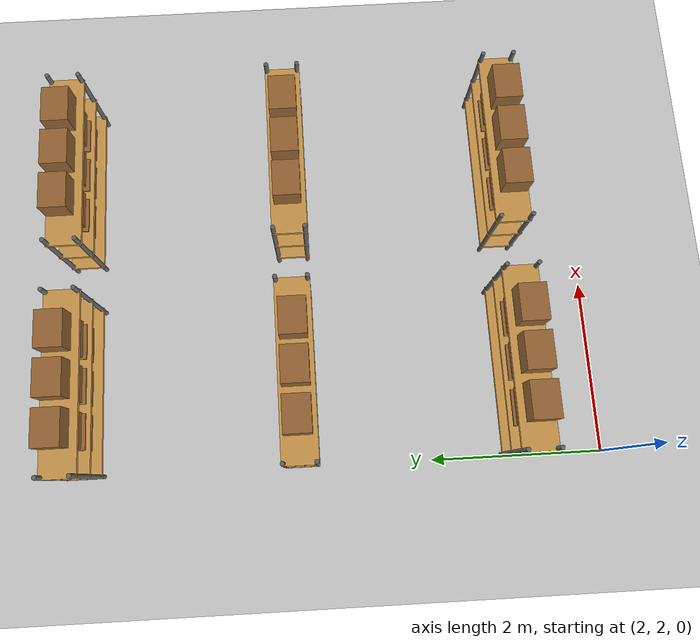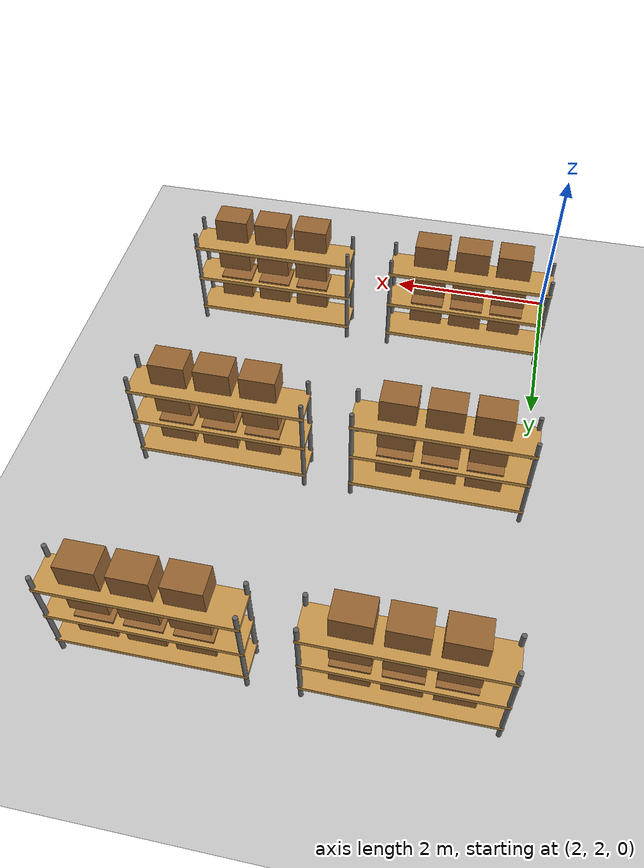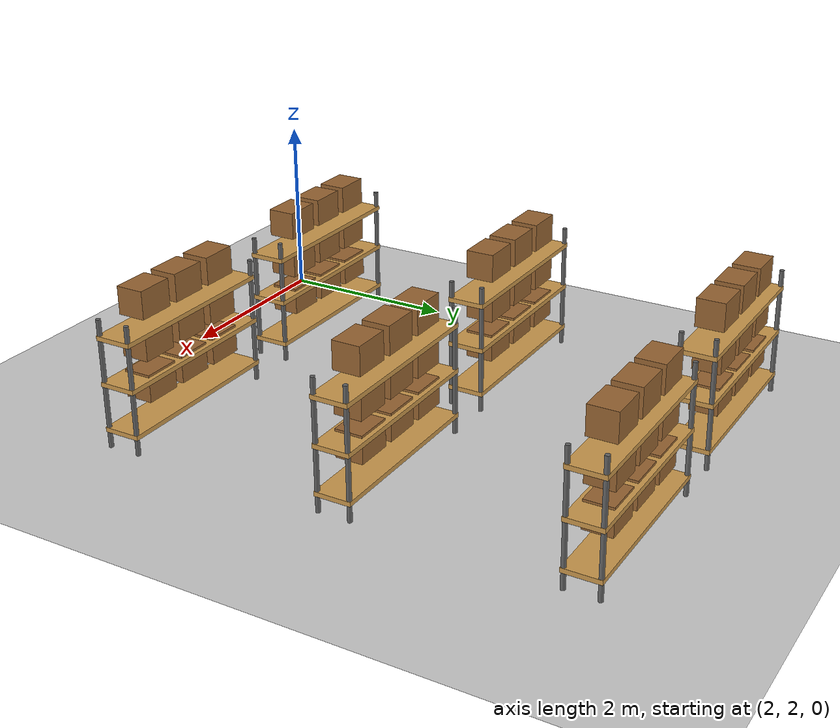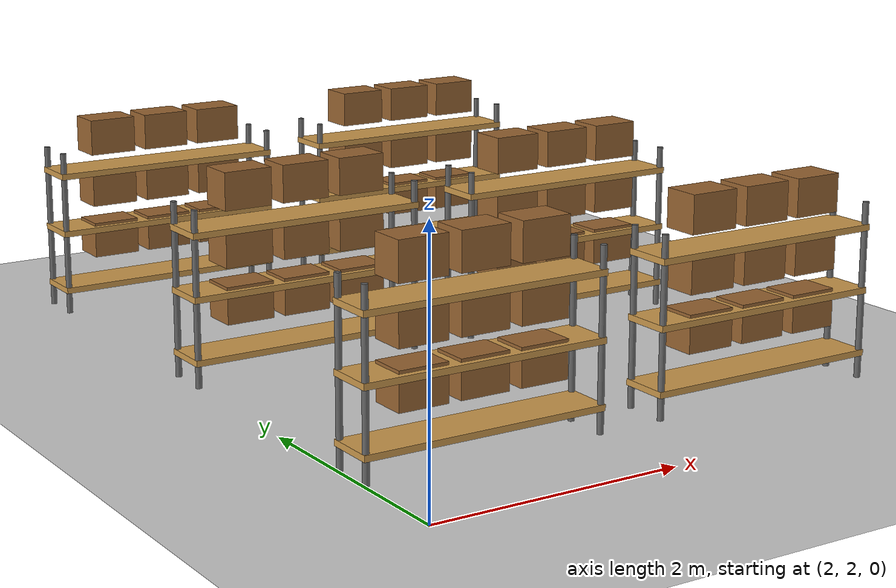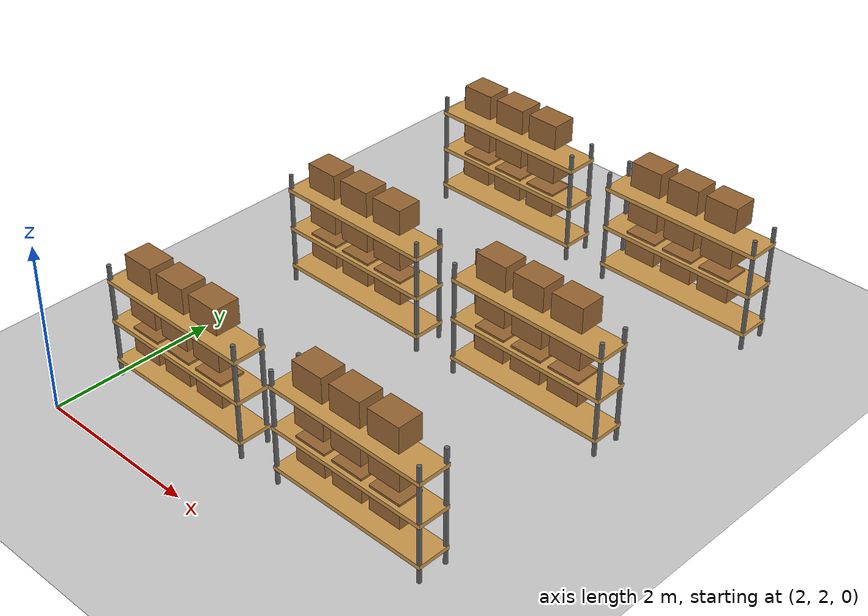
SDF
<?xml version='1.0' encoding='utf-8'?>
<sdf version="1.6">
  <world name="default">
    <include>
      <uri>model://ground_plane</uri>
    </include>
    <include>
      <uri>model://sun</uri>
    </include>
    <include>
      <uri>model://three_layer_shelf</uri>
      <name>shelf_0</name>
      <pose>3.0 3.0 0.0 0.0 0.0 0.0</pose>
    </include>
    <include>
      <uri>model://simple_cardboard_box</uri>
      <name>shelf0_box0_0</name>
      <pose>2.5 3.0 0.6 0.0 0.0 0.0</pose>
    </include>
    <include>
      <uri>model://simple_cardboard_box</uri>
      <name>shelf0_box0_1</name>
      <pose>3.0 3.0 0.6 0.0 0.0 0.0</pose>
    </include>
    <include>
      <uri>model://simple_cardboard_box</uri>
      <name>shelf0_box0_2</name>
      <pose>3.5 3.0 0.6 0.0 0.0 0.0</pose>
    </include>
    <include>
      <uri>model://simple_cardboard_box</uri>
      <name>shelf0_box1_0</name>
      <pose>2.5 3.0 1.05 0.0 0.0 0.0</pose>
    </include>
    <include>
      <uri>model://simple_cardboard_box</uri>
      <name>shelf0_box1_1</name>
      <pose>3.0 3.0 1.05 0.0 0.0 0.0</pose>
    </include>
    <include>
      <uri>model://simple_cardboard_box</uri>
      <name>shelf0_box1_2</name>
      <pose>3.5 3.0 1.05 0.0 0.0 0.0</pose>
    </include>
    <include>
      <uri>model://simple_cardboard_box</uri>
      <name>shelf0_box2_0</name>
      <pose>2.5 3.0 1.5 0.0 0.0 0.0</pose>
    </include>
    <include>
      <uri>model://simple_cardboard_box</uri>
      <name>shelf0_box2_1</name>
      <pose>3.0 3.0 1.5 0.0 0.0 0.0</pose>
    </include>
    <include>
      <uri>model://simple_cardboard_box</uri>
      <name>shelf0_box2_2</name>
      <pose>3.5 3.0 1.5 0.0 0.0 0.0</pose>
    </include>
    <include>
      <uri>model://three_layer_shelf</uri>
      <name>shelf_1</name>
      <pose>5.5 3.0 0.0 0.0 0.0 0.0</pose>
    </include>
    <include>
      <uri>model://simple_cardboard_box</uri>
      <name>shelf1_box0_0</name>
      <pose>5.0 3.0 0.6 0.0 0.0 0.0</pose>
    </include>
    <include>
      <uri>model://simple_cardboard_box</uri>
      <name>shelf1_box0_1</name>
      <pose>5.5 3.0 0.6 0.0 0.0 0.0</pose>
    </include>
    <include>
      <uri>model://simple_cardboard_box</uri>
      <name>shelf1_box0_2</name>
      <pose>6.0 3.0 0.6 0.0 0.0 0.0</pose>
    </include>
    <include>
      <uri>model://simple_cardboard_box</uri>
      <name>shelf1_box1_0</name>
      <pose>5.0 3.0 1.05 0.0 0.0 0.0</pose>
    </include>
    <include>
      <uri>model://simple_cardboard_box</uri>
      <name>shelf1_box1_1</name>
      <pose>5.5 3.0 1.05 0.0 0.0 0.0</pose>
    </include>
    <include>
      <uri>model://simple_cardboard_box</uri>
      <name>shelf1_box1_2</name>
      <pose>6.0 3.0 1.05 0.0 0.0 0.0</pose>
    </include>
    <include>
      <uri>model://simple_cardboard_box</uri>
      <name>shelf1_box2_0</name>
      <pose>5.0 3.0 1.5 0.0 0.0 0.0</pose>
    </include>
    <include>
      <uri>model://simple_cardboard_box</uri>
      <name>shelf1_box2_1</name>
      <pose>5.5 3.0 1.5 0.0 0.0 0.0</pose>
    </include>
    <include>
      <uri>model://simple_cardboard_box</uri>
      <name>shelf1_box2_2</name>
      <pose>6.0 3.0 1.5 0.0 0.0 0.0</pose>
    </include>
    <include>
      <uri>model://three_layer_shelf</uri>
      <name>shelf_2</name>
      <pose>3.0 5.5 0.0 0.0 0.0 0.0</pose>
    </include>
    <include>
      <uri>model://simple_cardboard_box</uri>
      <name>shelf2_box0_0</name>
      <pose>2.5 5.5 0.6 0.0 0.0 0.0</pose>
    </include>
    <include>
      <uri>model://simple_cardboard_box</uri>
      <name>shelf2_box0_1</name>
      <pose>3.0 5.5 0.6 0.0 0.0 0.0</pose>
    </include>
    <include>
      <uri>model://simple_cardboard_box</uri>
      <name>shelf2_box0_2</name>
      <pose>3.5 5.5 0.6 0.0 0.0 0.0</pose>
    </include>
    <include>
      <uri>model://simple_cardboard_box</uri>
      <name>shelf2_box1_0</name>
      <pose>2.5 5.5 1.05 0.0 0.0 0.0</pose>
    </include>
    <include>
      <uri>model://simple_cardboard_box</uri>
      <name>shelf2_box1_1</name>
      <pose>3.0 5.5 1.05 0.0 0.0 0.0</pose>
    </include>
    <include>
      <uri>model://simple_cardboard_box</uri>
      <name>shelf2_box1_2</name>
      <pose>3.5 5.5 1.05 0.0 0.0 0.0</pose>
    </include>
    <include>
      <uri>model://simple_cardboard_box</uri>
      <name>shelf2_box2_0</name>
      <pose>2.5 5.5 1.5 0.0 0.0 0.0</pose>
    </include>
    <include>
      <uri>model://simple_cardboard_box</uri>
      <name>shelf2_box2_1</name>
      <pose>3.0 5.5 1.5 0.0 0.0 0.0</pose>
    </include>
    <include>
      <uri>model://simple_cardboard_box</uri>
      <name>shelf2_box2_2</name>
      <pose>3.5 5.5 1.5 0.0 0.0 0.0</pose>
    </include>
    <include>
      <uri>model://three_layer_shelf</uri>
      <name>shelf_3</name>
      <pose>5.5 5.5 0.0 0.0 0.0 0.0</pose>
    </include>
    <include>
      <uri>model://simple_cardboard_box</uri>
      <name>shelf3_box0_0</name>
      <pose>5.0 5.5 0.6 0.0 0.0 0.0</pose>
    </include>
    <include>
      <uri>model://simple_cardboard_box</uri>
      <name>shelf3_box0_1</name>
      <pose>5.5 5.5 0.6 0.0 0.0 0.0</pose>
    </include>
    <include>
      <uri>model://simple_cardboard_box</uri>
      <name>shelf3_box0_2</name>
      <pose>6.0 5.5 0.6 0.0 0.0 0.0</pose>
    </include>
    <include>
      <uri>model://simple_cardboard_box</uri>
      <name>shelf3_box1_0</name>
      <pose>5.0 5.5 1.05 0.0 0.0 0.0</pose>
    </include>
    <include>
      <uri>model://simple_cardboard_box</uri>
      <name>shelf3_box1_1</name>
      <pose>5.5 5.5 1.05 0.0 0.0 0.0</pose>
    </include>
    <include>
      <uri>model://simple_cardboard_box</uri>
      <name>shelf3_box1_2</name>
      <pose>6.0 5.5 1.05 0.0 0.0 0.0</pose>
    </include>
    <include>
      <uri>model://simple_cardboard_box</uri>
      <name>shelf3_box2_0</name>
      <pose>5.0 5.5 1.5 0.0 0.0 0.0</pose>
    </include>
    <include>
      <uri>model://simple_cardboard_box</uri>
      <name>shelf3_box2_1</name>
      <pose>5.5 5.5 1.5 0.0 0.0 0.0</pose>
    </include>
    <include>
      <uri>model://simple_cardboard_box</uri>
      <name>shelf3_box2_2</name>
      <pose>6.0 5.5 1.5 0.0 0.0 0.0</pose>
    </include>
    <include>
      <uri>model://three_layer_shelf</uri>
      <name>shelf_4</name>
      <pose>3.0 8.0 0.0 0.0 0.0 0.0</pose>
    </include>
    <include>
      <uri>model://simple_cardboard_box</uri>
      <name>shelf4_box0_0</name>
      <pose>2.5 8.0 0.6 0.0 0.0 0.0</pose>
    </include>
    <include>
      <uri>model://simple_cardboard_box</uri>
      <name>shelf4_box0_1</name>
      <pose>3.0 8.0 0.6 0.0 0.0 0.0</pose>
    </include>
    <include>
      <uri>model://simple_cardboard_box</uri>
      <name>shelf4_box0_2</name>
      <pose>3.5 8.0 0.6 0.0 0.0 0.0</pose>
    </include>
    <include>
      <uri>model://simple_cardboard_box</uri>
      <name>shelf4_box1_0</name>
      <pose>2.5 8.0 1.05 0.0 0.0 0.0</pose>
    </include>
    <include>
      <uri>model://simple_cardboard_box</uri>
      <name>shelf4_box1_1</name>
      <pose>3.0 8.0 1.05 0.0 0.0 0.0</pose>
    </include>
    <include>
      <uri>model://simple_cardboard_box</uri>
      <name>shelf4_box1_2</name>
      <pose>3.5 8.0 1.05 0.0 0.0 0.0</pose>
    </include>
    <include>
      <uri>model://simple_cardboard_box</uri>
      <name>shelf4_box2_0</name>
      <pose>2.5 8.0 1.5 0.0 0.0 0.0</pose>
    </include>
    <include>
      <uri>model://simple_cardboard_box</uri>
      <name>shelf4_box2_1</name>
      <pose>3.0 8.0 1.5 0.0 0.0 0.0</pose>
    </include>
    <include>
      <uri>model://simple_cardboard_box</uri>
      <name>shelf4_box2_2</name>
      <pose>3.5 8.0 1.5 0.0 0.0 0.0</pose>
    </include>
    <include>
      <uri>model://three_layer_shelf</uri>
      <name>shelf_5</name>
      <pose>5.5 8.0 0.0 0.0 0.0 0.0</pose>
    </include>
    <include>
      <uri>model://simple_cardboard_box</uri>
      <name>shelf5_box0_0</name>
      <pose>5.0 8.0 0.6 0.0 0.0 0.0</pose>
    </include>
    <include>
      <uri>model://simple_cardboard_box</uri>
      <name>shelf5_box0_1</name>
      <pose>5.5 8.0 0.6 0.0 0.0 0.0</pose>
    </include>
    <include>
      <uri>model://simple_cardboard_box</uri>
      <name>shelf5_box0_2</name>
      <pose>6.0 8.0 0.6 0.0 0.0 0.0</pose>
    </include>
    <include>
      <uri>model://simple_cardboard_box</uri>
      <name>shelf5_box1_0</name>
      <pose>5.0 8.0 1.05 0.0 0.0 0.0</pose>
    </include>
    <include>
      <uri>model://simple_cardboard_box</uri>
      <name>shelf5_box1_1</name>
      <pose>5.5 8.0 1.05 0.0 0.0 0.0</pose>
    </include>
    <include>
      <uri>model://simple_cardboard_box</uri>
      <name>shelf5_box1_2</name>
      <pose>6.0 8.0 1.05 0.0 0.0 0.0</pose>
    </include>
    <include>
      <uri>model://simple_cardboard_box</uri>
      <name>shelf5_box2_0</name>
      <pose>5.0 8.0 1.5 0.0 0.0 0.0</pose>
    </include>
    <include>
      <uri>model://simple_cardboard_box</uri>
      <name>shelf5_box2_1</name>
      <pose>5.5 8.0 1.5 0.0 0.0 0.0</pose>
    </include>
    <include>
      <uri>model://simple_cardboard_box</uri>
      <name>shelf5_box2_2</name>
      <pose>6.0 8.0 1.5 0.0 0.0 0.0</pose>
    </include>
  </world>
</sdf>

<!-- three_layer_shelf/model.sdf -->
<sdf version="1.6">
  <model name="three_layer_shelf">
    <static>true</static>

    <link name="shelf_1">
      <pose>0 0 0.2 0 0 0</pose>
      <collision name="collision">
        <geometry>
          <box>
            <size>2.0 0.4 0.05</size>
          </box>
        </geometry>
      </collision>
      <visual name="visual">
        <geometry>
          <box>
            <size>2.0 0.4 0.05</size>
          </box>
        </geometry>
        <material>
          <ambient>0.8 0.6 0.3 1</ambient>
          <diffuse>0.8 0.6 0.3 1</diffuse>
        </material>
      </visual>
    </link>

    <link name="shelf_2">
      <pose>0 0 0.7 0 0 0</pose>
      <collision name="collision">
        <geometry>
          <box>
            <size>2.0 0.4 0.05</size>
          </box>
        </geometry>
      </collision>
      <visual name="visual">
        <geometry>
          <box>
            <size>2.0 0.4 0.05</size>
          </box>
        </geometry>
        <material>
          <ambient>0.8 0.6 0.3 1</ambient>
          <diffuse>0.8 0.6 0.3 1</diffuse>
        </material>
      </visual>
    </link>

    <link name="shelf_3">
      <pose>0 0 1.2 0 0 0</pose>
      <collision name="collision">
        <geometry>
          <box>
            <size>2.0 0.4 0.05</size>
          </box>
        </geometry>
      </collision>
      <visual name="visual">
        <geometry>
          <box>
            <size>2.0 0.4 0.05</size>
          </box>
        </geometry>
        <material>
          <ambient>0.8 0.6 0.3 1</ambient>
          <diffuse>0.8 0.6 0.3 1</diffuse>
        </material>
      </visual>
    </link>

    <link name="post_1">
      <pose>-0.975 -0.17500000000000002 0.7 0 0 0</pose>
      <collision name="collision">
        <geometry>
          <cylinder>
            <radius>0.025</radius>
            <length>1.4</length>
          </cylinder>
        </geometry>
      </collision>
      <visual name="visual">
        <geometry>
          <cylinder>
            <radius>0.025</radius>
            <length>1.4</length>
          </cylinder>
        </geometry>
        <material>
          <ambient>0.4 0.4 0.4 1</ambient>
          <diffuse>0.4 0.4 0.4 1</diffuse>
        </material>
      </visual>
    </link>

    <link name="post_2">
      <pose>-0.975 0.17500000000000002 0.7 0 0 0</pose>
      <collision name="collision">
        <geometry>
          <cylinder>
            <radius>0.025</radius>
            <length>1.4</length>
          </cylinder>
        </geometry>
      </collision>
      <visual name="visual">
        <geometry>
          <cylinder>
            <radius>0.025</radius>
            <length>1.4</length>
          </cylinder>
        </geometry>
        <material>
          <ambient>0.4 0.4 0.4 1</ambient>
          <diffuse>0.4 0.4 0.4 1</diffuse>
        </material>
      </visual>
    </link>

    <link name="post_3">
      <pose>0.975 -0.17500000000000002 0.7 0 0 0</pose>
      <collision name="collision">
        <geometry>
          <cylinder>
            <radius>0.025</radius>
            <length>1.4</length>
          </cylinder>
        </geometry>
      </collision>
      <visual name="visual">
        <geometry>
          <cylinder>
            <radius>0.025</radius>
            <length>1.4</length>
          </cylinder>
        </geometry>
        <material>
          <ambient>0.4 0.4 0.4 1</ambient>
          <diffuse>0.4 0.4 0.4 1</diffuse>
        </material>
      </visual>
    </link>

    <link name="post_4">
      <pose>0.975 0.17500000000000002 0.7 0 0 0</pose>
      <collision name="collision">
        <geometry>
          <cylinder>
            <radius>0.025</radius>
            <length>1.4</length>
          </cylinder>
        </geometry>
      </collision>
      <visual name="visual">
        <geometry>
          <cylinder>
            <radius>0.025</radius>
            <length>1.4</length>
          </cylinder>
        </geometry>
        <material>
          <ambient>0.4 0.4 0.4 1</ambient>
          <diffuse>0.4 0.4 0.4 1</diffuse>
        </material>
      </visual>
    </link>

</model>
</sdf>

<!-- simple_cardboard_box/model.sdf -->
<sdf version="1.6">
  <model name="simple_cardboard_box">
    <static>false</static>
    <link name="box_link">
      <inertial>
        <mass>1.0</mass>
        <inertia>
          <ixx>0.01</ixx>
          <iyy>0.01</iyy>
          <izz>0.01</izz>
        </inertia>
      </inertial>
      <collision name="collision">
        <geometry>
          <box>
            <size>0.4 0.3 0.3</size>
          </box>
        </geometry>
      </collision>
      <visual name="visual">
        <geometry>
          <box>
            <size>0.4 0.3 0.3</size>
          </box>
        </geometry>
        <material>
          <ambient>0.6 0.4 0.2 1</ambient>
          <diffuse>0.6 0.4 0.2 1</diffuse>
        </material>
      </visual>
    </link>
  </model>
</sdf>
